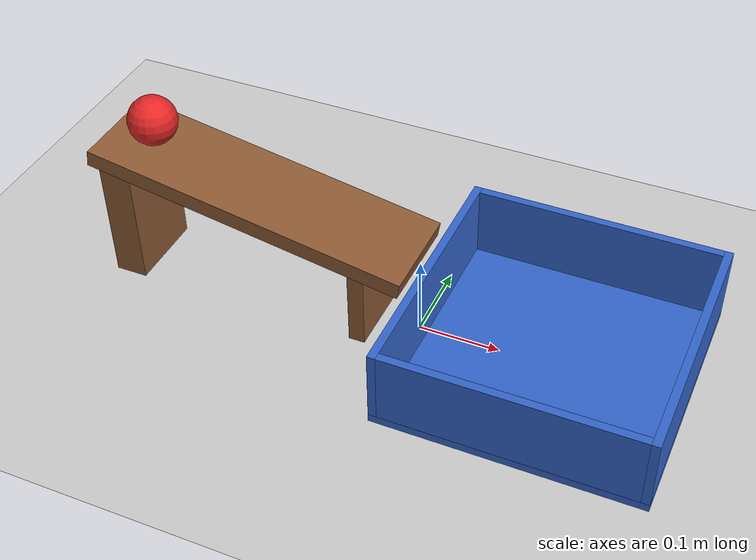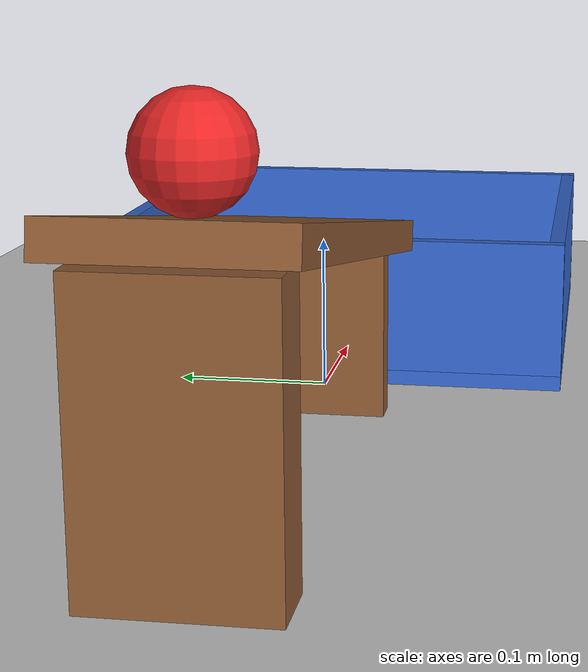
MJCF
<mujoco model="ball_ramp_cup">
  <compiler angle="degree"/>
  <option timestep="0.002" gravity="0 0 -9.81"/>

  <visual>
    <global offwidth="1280" offheight="720"/>
  </visual>

  <asset>
    <material name="floor_mat" rgba="0.8 0.8 0.8 1"/>
    <material name="ramp_mat" rgba="0.55 0.35 0.2 1"/>
    <material name="cup_mat" rgba="0.2 0.4 0.8 1"/>
    <material name="ball_mat" rgba="0.9 0.15 0.15 1"/>
  </asset>

  <worldbody>
    <light name="sun" pos="0 0 2" dir="0 0 -1" directional="true"/>
    <geom name="floor" type="plane" size="2 2 0.1" pos="0 0 0" material="floor_mat"/>

    <!-- Static ramp: 10 deg slope, top surface low edge at (0, 0, 0.115) -->
    <geom name="ramp_board" type="box" size="0.2 0.06 0.01" pos="-0.1987 0 0.1399" euler="0 10 0" material="ramp_mat" friction="1 0.005 0.001"/>
    <geom name="ramp_support_high" type="box" size="0.02 0.05 0.08" pos="-0.37 0 0.08" material="ramp_mat"/>
    <geom name="ramp_support_low" type="box" size="0.01 0.05 0.0525" pos="-0.06 0 0.0525" material="ramp_mat"/>

    <!-- Cup: open box, inner floor at z=0.01, rim at z=0.10, inner x from 0.015 to 0.315 -->
    <body name="cup" pos="0.165 0 0">
      <geom name="cup_base" type="box" size="0.16 0.16 0.005" pos="0 0 0.005" material="cup_mat"/>
      <geom name="cup_wall_near" type="box" size="0.005 0.16 0.045" pos="-0.155 0 0.055" material="cup_mat"/>
      <geom name="cup_wall_far" type="box" size="0.005 0.16 0.045" pos="0.155 0 0.055" material="cup_mat"/>
      <geom name="cup_wall_left" type="box" size="0.15 0.005 0.045" pos="0 0.155 0.055" material="cup_mat"/>
      <geom name="cup_wall_right" type="box" size="0.15 0.005 0.045" pos="0 -0.155 0.055" material="cup_mat"/>
    </body>

    <!-- Ball resting on the ramp near its upper end -->
    <body name="ball" pos="-0.3395 0 0.2053">
      <freejoint name="ball_free"/>
      <geom name="ball" type="sphere" size="0.03" material="ball_mat" condim="6" friction="1 0.005 0.001"/>
    </body>
  </worldbody>

  <keyframe>
    <key name="start" qpos="-0.3395 0 0.2053 1 0 0 0" qvel="0 0 0 0 0 0"/>
  </keyframe>
</mujoco>
